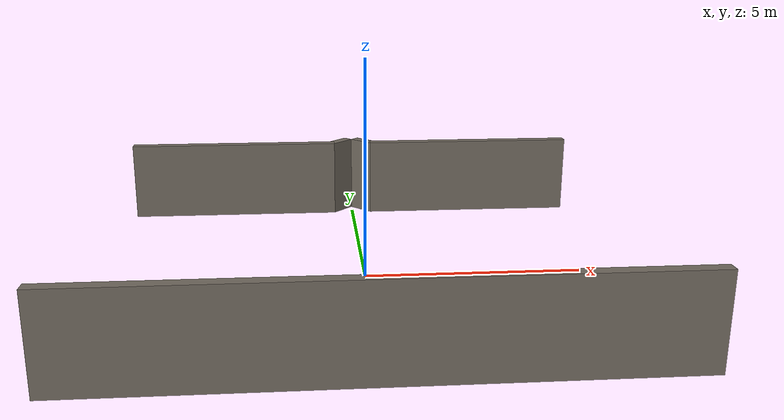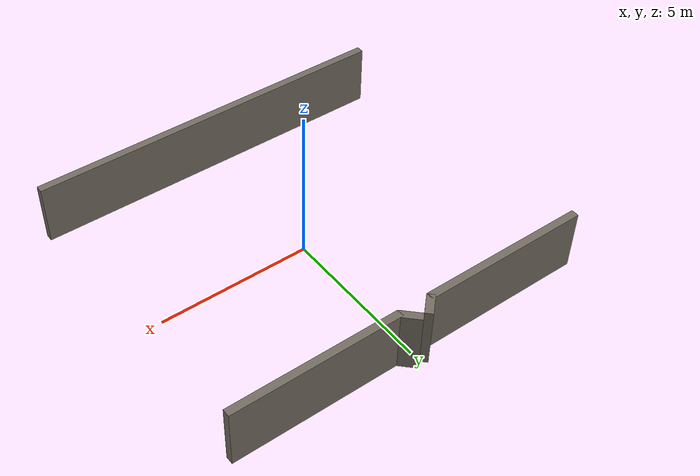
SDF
<sdf version="1.6">
 <world name="lidar_placement">
  <model name="dock_wall_north">
   <static>true</static>
   <link name="left_straight_link">
    <pose>-3.25 5.0 1.0 0 0 0</pose>
    <collision name="collision"><geometry><box><size>5.50 0.25 2.0</size></box></geometry></collision>
    <visual name="visual">
     <geometry><box><size>5.50 0.25 2.0</size></box></geometry>
     <material><ambient>0.45 0.42 0.38 1</ambient><diffuse>0.45 0.42 0.38 1</diffuse></material>
    </visual>
   </link>
   <link name="right_straight_link">
    <pose>3.25 5.0 1.0 0 0 0</pose>
    <collision name="collision"><geometry><box><size>5.50 0.25 2.0</size></box></geometry></collision>
    <visual name="visual">
     <geometry><box><size>5.50 0.25 2.0</size></box></geometry>
     <material><ambient>0.45 0.42 0.38 1</ambient><diffuse>0.45 0.42 0.38 1</diffuse></material>
    </visual>
   </link>
   <link name="triangular_notch_left_link">
    <pose>-0.338388 5.213388 1.0 0 0 0.78539816339</pose>
    <collision name="collision"><geometry><box><size>0.707107 0.25 2.0</size></box></geometry></collision>
    <visual name="visual">
     <geometry><box><size>0.707107 0.25 2.0</size></box></geometry>
     <material><ambient>0.45 0.42 0.38 1</ambient><diffuse>0.45 0.42 0.38 1</diffuse></material>
    </visual>
   </link>
   <link name="triangular_notch_right_link">
    <pose>0.338388 5.213388 1.0 0 0 -0.78539816339</pose>
    <collision name="collision"><geometry><box><size>0.707107 0.25 2.0</size></box></geometry></collision>
    <visual name="visual">
     <geometry><box><size>0.707107 0.25 2.0</size></box></geometry>
     <material><ambient>0.45 0.42 0.38 1</ambient><diffuse>0.45 0.42 0.38 1</diffuse></material>
    </visual>
   </link>
  </model>
  <model name="dock_wall_south">
   <static>true</static>
   <pose>0 -5.0 1.0 0 0 0</pose>
   <link name="link">
    <collision name="collision"><geometry><box><size>12.0 0.25 2.0</size></box></geometry></collision>
    <visual name="visual">
     <geometry><box><size>12.0 0.25 2.0</size></box></geometry>
     <material><ambient>0.45 0.42 0.38 1</ambient><diffuse>0.45 0.42 0.38 1</diffuse></material>
    </visual>
   </link>
  </model>
 </world>
</sdf>
